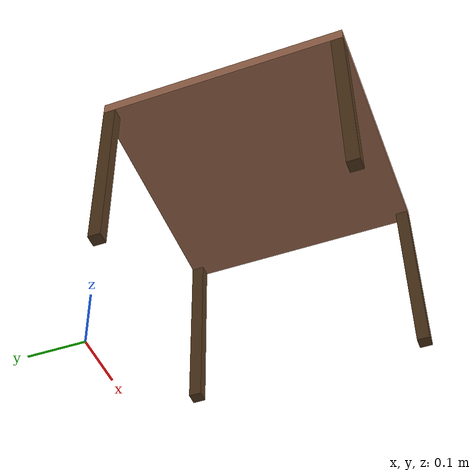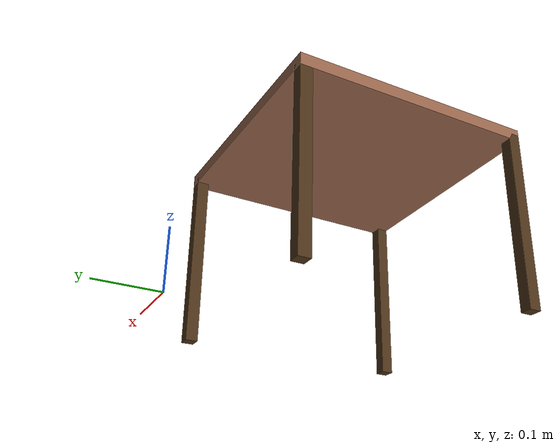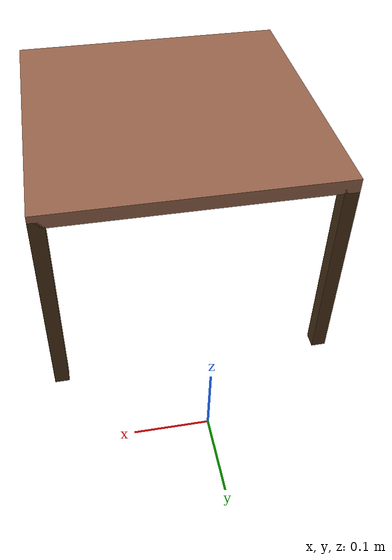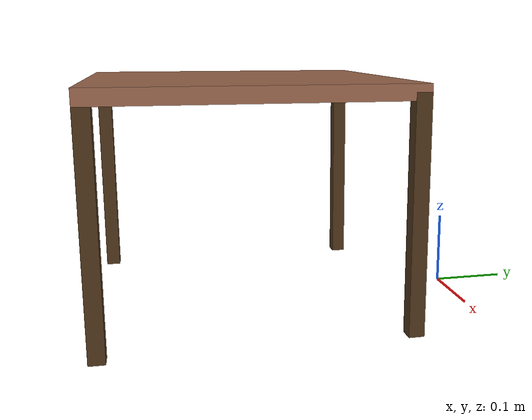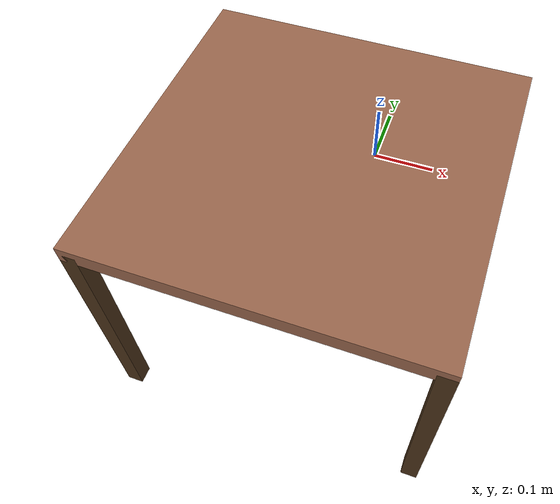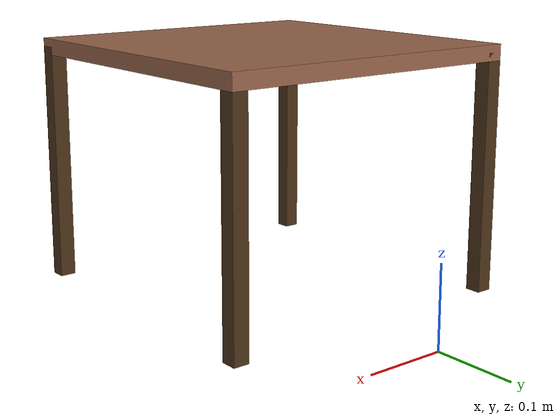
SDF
<?xml version="1.0" ?>
<sdf version="1.6">
  <model name="fixed_box">
    <static>true</static>

    <link name="table">
      <!-- Tabletop -->
      <visual name="tabletop_visual">
        <geometry>
          <box>
            <size>0.4 0.4 0.02</size>
          </box>
        </geometry>
        <material>
          <diffuse>0.6 0.4 0.3 1.0</diffuse>
        </material>
        <pose>0 0 0.3 0 0 0</pose>
      </visual>
      <collision name="tabletop_collision">
        <geometry>
          <box>
            <size>0.4 0.4 0.02</size>
          </box>
        </geometry>
        <pose>0 0 0.3 0 0 0</pose>
      </collision>

      <!-- Legs -->
      <visual name="leg1_visual">
        <geometry>
          <box>
            <size>0.02 0.02 0.3</size>
          </box>
        </geometry>
        <material><diffuse>0.3 0.2 0.1 1.0</diffuse></material>
        <pose> 0.19  0.19 0.15 0 0 0</pose>
      </visual>
      <collision name="leg1_collision">
        <geometry><box><size>0.02 0.02 0.3</size></box></geometry>
        <pose> 0.19  0.19 0.15 0 0 0</pose>
      </collision>

      <visual name="leg2_visual">
        <geometry><box><size>0.02 0.02 0.3</size></box></geometry>
        <material><diffuse>0.3 0.2 0.1 1.0</diffuse></material>
        <pose> 0.19 -0.19 0.15 0 0 0</pose>
      </visual>
      <collision name="leg2_collision">
        <geometry><box><size>0.02 0.02 0.3</size></box></geometry>
        <pose> 0.19 -0.19 0.15 0 0 0</pose>
      </collision>

      <visual name="leg3_visual">
        <geometry><box><size>0.02 0.02 0.3</size></box></geometry>
        <material><diffuse>0.3 0.2 0.1 1.0</diffuse></material>
        <pose>-0.19  0.19 0.15 0 0 0</pose>
      </visual>
      <collision name="leg3_collision">
        <geometry><box><size>0.02 0.02 0.3</size></box></geometry>
        <pose>-0.19  0.19 0.15 0 0 0</pose>
      </collision>

      <visual name="leg4_visual">
        <geometry><box><size>0.02 0.02 0.3</size></box></geometry>
        <material><diffuse>0.3 0.2 0.1 1.0</diffuse></material>
        <pose>-0.19 -0.19 0.15 0 0 0</pose>
      </visual>
      <collision name="leg4_collision">
        <geometry><box><size>0.02 0.02 0.3</size></box></geometry>
        <pose>-0.19 -0.19 0.15 0 0 0</pose>
      </collision>
    </link>

    <!-- Just move this pose to move the whole table -->
    <pose>0 -0.3 0 0 0 0</pose>
  </model>
</sdf>
